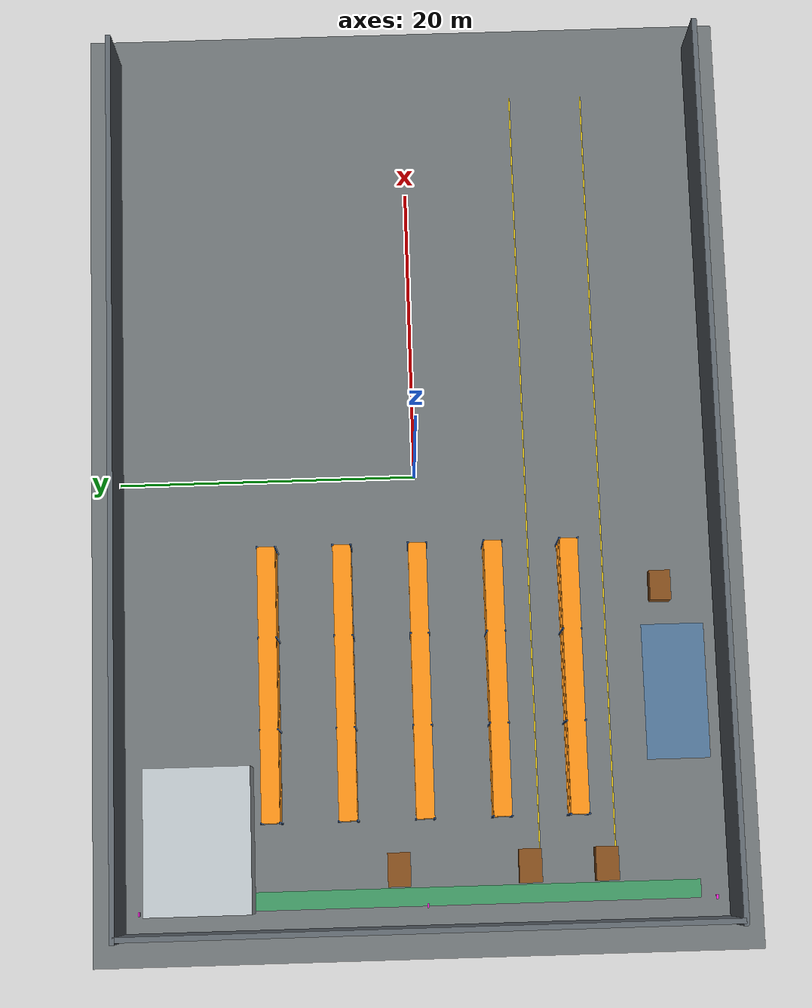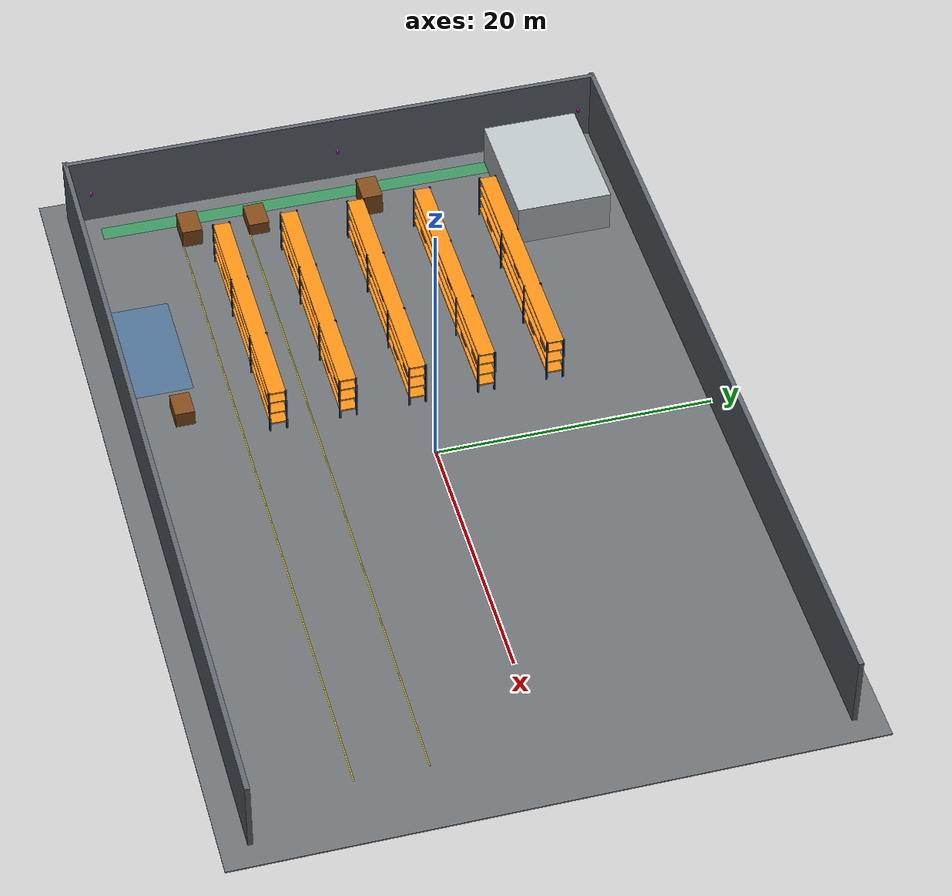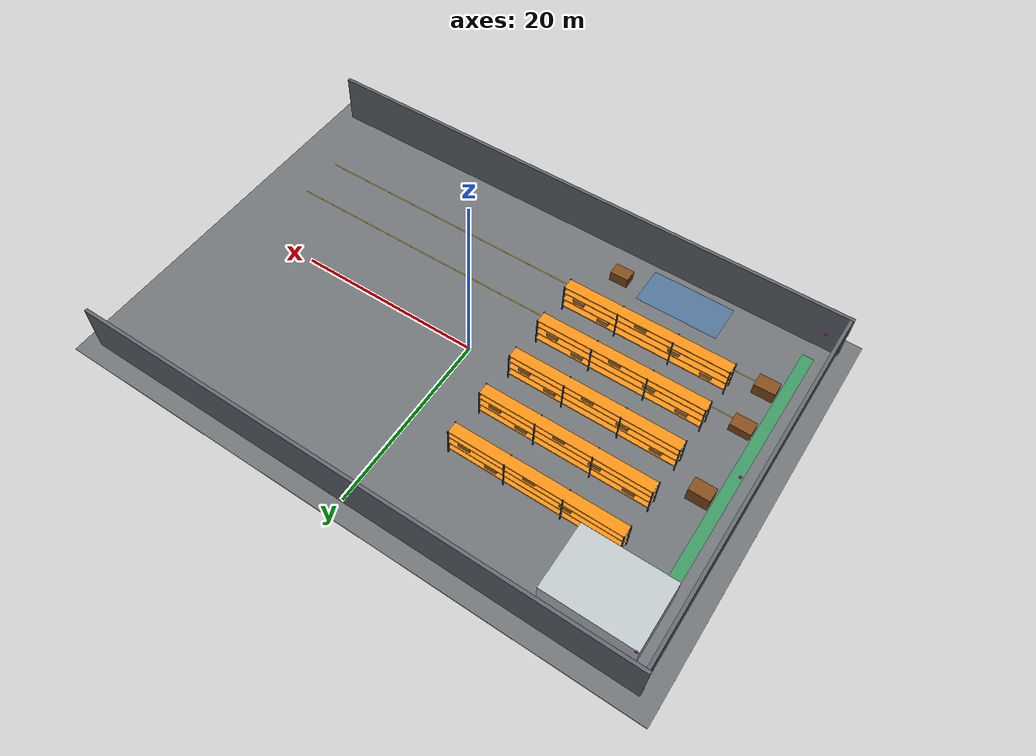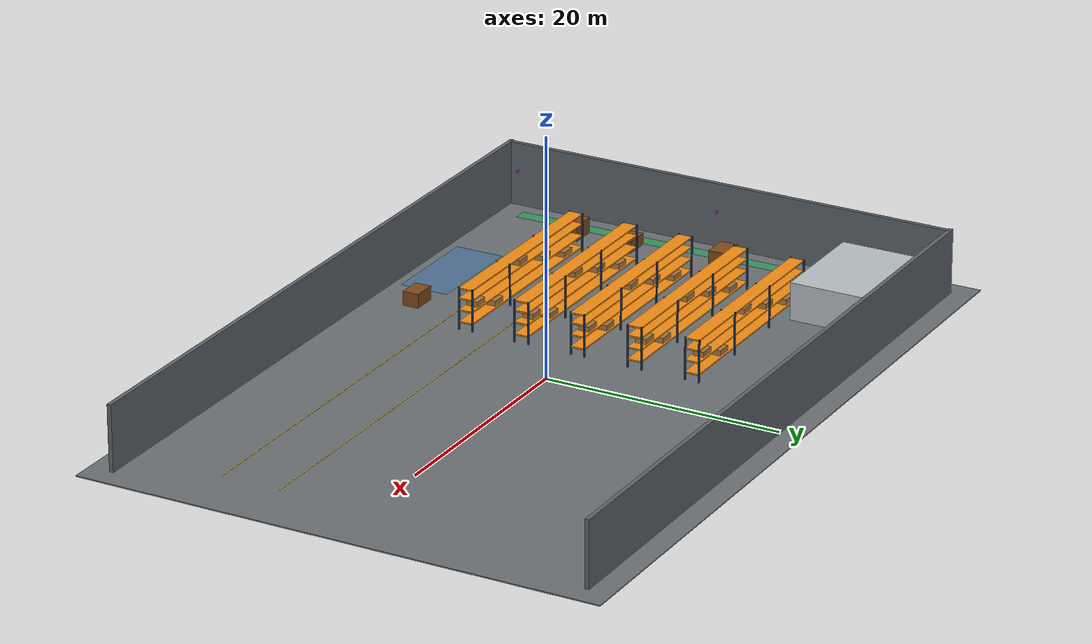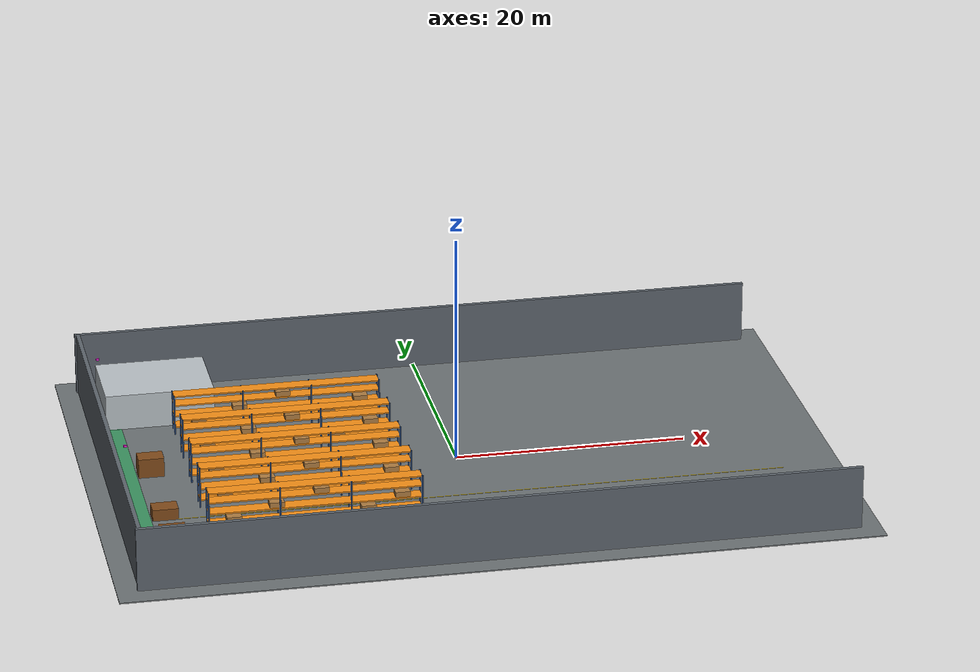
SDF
<sdf version="1.7">
 <world name="real_warehouse">
  <include><uri>model://sun</uri></include>
  <model name="concrete_floor">
   <static>true</static>
   <pose>0 0 -0.06 0 0 0</pose>
   <link name="floor">
    <collision name="collision">
     <geometry><box><size>64 44 0.10</size></box></geometry>
     <surface><friction><ode><mu>1.0</mu><mu2>1.0</mu2></ode></friction></surface>
    </collision>
    <visual name="visual">
     <geometry><box><size>64 44 0.10</size></box></geometry>
     <material><ambient>0.42 0.44 0.45 1</ambient><diffuse>0.42 0.44 0.45 1</diffuse></material>
    </visual>
   </link>
  </model>
  <model name="north_wall">
   <static>true</static>
   <pose>0.0 20.0 2.75 0 0 0</pose>
   <link name="link">
    <collision name="collision">
     <geometry><box><size>60.6 0.35 5.5</size></box></geometry>
     <surface><friction><ode><mu>0.9</mu><mu2>0.9</mu2></ode></friction></surface>
    </collision>
    <visual name="visual">
     <geometry><box><size>60.6 0.35 5.5</size></box></geometry>
     <material><ambient>0.36 0.39 0.42 1</ambient><diffuse>0.36 0.39 0.42 1</diffuse></material>
    </visual>
   </link>
  </model>
  <model name="south_wall">
   <static>true</static>
   <pose>0.0 -20.0 2.75 0 0 0</pose>
   <link name="link">
    <collision name="collision">
     <geometry><box><size>60.6 0.35 5.5</size></box></geometry>
     <surface><friction><ode><mu>0.9</mu><mu2>0.9</mu2></ode></friction></surface>
    </collision>
    <visual name="visual">
     <geometry><box><size>60.6 0.35 5.5</size></box></geometry>
     <material><ambient>0.36 0.39 0.42 1</ambient><diffuse>0.36 0.39 0.42 1</diffuse></material>
    </visual>
   </link>
  </model>
  <model name="west_wall">
   <static>true</static>
   <pose>-30.0 0.0 2.75 0 0 0</pose>
   <link name="link">
    <collision name="collision">
     <geometry><box><size>0.35 40.0 5.5</size></box></geometry>
     <surface><friction><ode><mu>0.9</mu><mu2>0.9</mu2></ode></friction></surface>
    </collision>
    <visual name="visual">
     <geometry><box><size>0.35 40.0 5.5</size></box></geometry>
     <material><ambient>0.36 0.39 0.42 1</ambient><diffuse>0.36 0.39 0.42 1</diffuse></material>
    </visual>
   </link>
  </model>
  <model name="office_block">
   <static>true</static>
   <pose>-24.0 14.8 1.6 0 0 0</pose>
   <link name="link">
    <collision name="collision">
     <geometry><box><size>9.5 7.0 3.2</size></box></geometry>
     <surface><friction><ode><mu>0.9</mu><mu2>0.9</mu2></ode></friction></surface>
    </collision>
    <visual name="visual">
     <geometry><box><size>9.5 7.0 3.2</size></box></geometry>
     <material><ambient>0.72 0.75 0.77 1</ambient><diffuse>0.72 0.75 0.77 1</diffuse></material>
    </visual>
   </link>
  </model>
  <model name="rack_1_west">
   <static>true</static>
   <pose>-14.0 -10.0 0 0 0 0</pose>
   <link name="rack">
    <collision name="rack_footprint">
     <pose>0 0 1.8 0 0 0</pose>
     <geometry><box><size>18.0 1.2 3.6</size></box></geometry>
    </collision>
    <visual name="upright_0_0">
     <pose>-9.0 -0.6 1.8 0 0 0</pose>
     <geometry><box><size>0.12 0.12 3.6</size></box></geometry>
     <material><ambient>0.12 0.24 0.42 1</ambient><diffuse>0.12 0.24 0.42 1</diffuse></material>
    </visual>
    <visual name="upright_0_1">
     <pose>-9.0 0.6 1.8 0 0 0</pose>
     <geometry><box><size>0.12 0.12 3.6</size></box></geometry>
     <material><ambient>0.12 0.24 0.42 1</ambient><diffuse>0.12 0.24 0.42 1</diffuse></material>
    </visual>
    <visual name="upright_1_0">
     <pose>-3.0 -0.6 1.8 0 0 0</pose>
     <geometry><box><size>0.12 0.12 3.6</size></box></geometry>
     <material><ambient>0.12 0.24 0.42 1</ambient><diffuse>0.12 0.24 0.42 1</diffuse></material>
    </visual>
    <visual name="upright_1_1">
     <pose>-3.0 0.6 1.8 0 0 0</pose>
     <geometry><box><size>0.12 0.12 3.6</size></box></geometry>
     <material><ambient>0.12 0.24 0.42 1</ambient><diffuse>0.12 0.24 0.42 1</diffuse></material>
    </visual>
    <visual name="upright_2_0">
     <pose>3.0 -0.6 1.8 0 0 0</pose>
     <geometry><box><size>0.12 0.12 3.6</size></box></geometry>
     <material><ambient>0.12 0.24 0.42 1</ambient><diffuse>0.12 0.24 0.42 1</diffuse></material>
    </visual>
    <visual name="upright_2_1">
     <pose>3.0 0.6 1.8 0 0 0</pose>
     <geometry><box><size>0.12 0.12 3.6</size></box></geometry>
     <material><ambient>0.12 0.24 0.42 1</ambient><diffuse>0.12 0.24 0.42 1</diffuse></material>
    </visual>
    <visual name="upright_3_0">
     <pose>9.0 -0.6 1.8 0 0 0</pose>
     <geometry><box><size>0.12 0.12 3.6</size></box></geometry>
     <material><ambient>0.12 0.24 0.42 1</ambient><diffuse>0.12 0.24 0.42 1</diffuse></material>
    </visual>
    <visual name="upright_3_1">
     <pose>9.0 0.6 1.8 0 0 0</pose>
     <geometry><box><size>0.12 0.12 3.6</size></box></geometry>
     <material><ambient>0.12 0.24 0.42 1</ambient><diffuse>0.12 0.24 0.42 1</diffuse></material>
    </visual>
    <visual name="beam_0">
     <pose>0 0 0.65 0 0 0</pose>
     <geometry><box><size>18.0 1.2 0.12</size></box></geometry>
     <material><ambient>0.95 0.55 0.08 1</ambient><diffuse>0.95 0.55 0.08 1</diffuse></material>
    </visual>
    <visual name="beam_1">
     <pose>0 0 1.65 0 0 0</pose>
     <geometry><box><size>18.0 1.2 0.12</size></box></geometry>
     <material><ambient>0.95 0.55 0.08 1</ambient><diffuse>0.95 0.55 0.08 1</diffuse></material>
    </visual>
    <visual name="beam_2">
     <pose>0 0 2.65 0 0 0</pose>
     <geometry><box><size>18.0 1.2 0.12</size></box></geometry>
     <material><ambient>0.95 0.55 0.08 1</ambient><diffuse>0.95 0.55 0.08 1</diffuse></material>
    </visual>
    <visual name="beam_3">
     <pose>0 0 3.5 0 0 0</pose>
     <geometry><box><size>18.0 1.2 0.12</size></box></geometry>
     <material><ambient>0.95 0.55 0.08 1</ambient><diffuse>0.95 0.55 0.08 1</diffuse></material>
    </visual>
    <visual name="load_0">
     <pose>-6.84 0 0.92 0 0 0</pose>
     <geometry><box><size>1.25 0.9359999999999999 0.48</size></box></geometry>
     <material><ambient>0.67 0.48 0.25 1</ambient><diffuse>0.67 0.48 0.25 1</diffuse></material>
    </visual>
    <visual name="load_1">
     <pose>-3.2399999999999998 0 1.92 0 0 0</pose>
     <geometry><box><size>1.25 0.9359999999999999 0.48</size></box></geometry>
     <material><ambient>0.67 0.48 0.25 1</ambient><diffuse>0.67 0.48 0.25 1</diffuse></material>
    </visual>
    <visual name="load_2">
     <pose>0.54 0 2.92 0 0 0</pose>
     <geometry><box><size>1.25 0.9359999999999999 0.48</size></box></geometry>
     <material><ambient>0.67 0.48 0.25 1</ambient><diffuse>0.67 0.48 0.25 1</diffuse></material>
    </visual>
    <visual name="load_3">
     <pose>4.5 0 0.92 0 0 0</pose>
     <geometry><box><size>1.25 0.9359999999999999 0.48</size></box></geometry>
     <material><ambient>0.67 0.48 0.25 1</ambient><diffuse>0.67 0.48 0.25 1</diffuse></material>
    </visual>
    <visual name="load_4">
     <pose>7.38 0 1.92 0 0 0</pose>
     <geometry><box><size>1.25 0.9359999999999999 0.48</size></box></geometry>
     <material><ambient>0.67 0.48 0.25 1</ambient><diffuse>0.67 0.48 0.25 1</diffuse></material>
    </visual>
   </link>
  </model>
  <model name="rack_2_west">
   <static>true</static>
   <pose>-14.0 -5.0 0 0 0 0</pose>
   <link name="rack">
    <collision name="rack_footprint">
     <pose>0 0 1.8 0 0 0</pose>
     <geometry><box><size>18.0 1.2 3.6</size></box></geometry>
    </collision>
    <visual name="upright_0_0">
     <pose>-9.0 -0.6 1.8 0 0 0</pose>
     <geometry><box><size>0.12 0.12 3.6</size></box></geometry>
     <material><ambient>0.12 0.24 0.42 1</ambient><diffuse>0.12 0.24 0.42 1</diffuse></material>
    </visual>
    <visual name="upright_0_1">
     <pose>-9.0 0.6 1.8 0 0 0</pose>
     <geometry><box><size>0.12 0.12 3.6</size></box></geometry>
     <material><ambient>0.12 0.24 0.42 1</ambient><diffuse>0.12 0.24 0.42 1</diffuse></material>
    </visual>
    <visual name="upright_1_0">
     <pose>-3.0 -0.6 1.8 0 0 0</pose>
     <geometry><box><size>0.12 0.12 3.6</size></box></geometry>
     <material><ambient>0.12 0.24 0.42 1</ambient><diffuse>0.12 0.24 0.42 1</diffuse></material>
    </visual>
    <visual name="upright_1_1">
     <pose>-3.0 0.6 1.8 0 0 0</pose>
     <geometry><box><size>0.12 0.12 3.6</size></box></geometry>
     <material><ambient>0.12 0.24 0.42 1</ambient><diffuse>0.12 0.24 0.42 1</diffuse></material>
    </visual>
    <visual name="upright_2_0">
     <pose>3.0 -0.6 1.8 0 0 0</pose>
     <geometry><box><size>0.12 0.12 3.6</size></box></geometry>
     <material><ambient>0.12 0.24 0.42 1</ambient><diffuse>0.12 0.24 0.42 1</diffuse></material>
    </visual>
    <visual name="upright_2_1">
     <pose>3.0 0.6 1.8 0 0 0</pose>
     <geometry><box><size>0.12 0.12 3.6</size></box></geometry>
     <material><ambient>0.12 0.24 0.42 1</ambient><diffuse>0.12 0.24 0.42 1</diffuse></material>
    </visual>
    <visual name="upright_3_0">
     <pose>9.0 -0.6 1.8 0 0 0</pose>
     <geometry><box><size>0.12 0.12 3.6</size></box></geometry>
     <material><ambient>0.12 0.24 0.42 1</ambient><diffuse>0.12 0.24 0.42 1</diffuse></material>
    </visual>
    <visual name="upright_3_1">
     <pose>9.0 0.6 1.8 0 0 0</pose>
     <geometry><box><size>0.12 0.12 3.6</size></box></geometry>
     <material><ambient>0.12 0.24 0.42 1</ambient><diffuse>0.12 0.24 0.42 1</diffuse></material>
    </visual>
    <visual name="beam_0">
     <pose>0 0 0.65 0 0 0</pose>
     <geometry><box><size>18.0 1.2 0.12</size></box></geometry>
     <material><ambient>0.95 0.55 0.08 1</ambient><diffuse>0.95 0.55 0.08 1</diffuse></material>
    </visual>
    <visual name="beam_1">
     <pose>0 0 1.65 0 0 0</pose>
     <geometry><box><size>18.0 1.2 0.12</size></box></geometry>
     <material><ambient>0.95 0.55 0.08 1</ambient><diffuse>0.95 0.55 0.08 1</diffuse></material>
    </visual>
    <visual name="beam_2">
     <pose>0 0 2.65 0 0 0</pose>
     <geometry><box><size>18.0 1.2 0.12</size></box></geometry>
     <material><ambient>0.95 0.55 0.08 1</ambient><diffuse>0.95 0.55 0.08 1</diffuse></material>
    </visual>
    <visual name="beam_3">
     <pose>0 0 3.5 0 0 0</pose>
     <geometry><box><size>18.0 1.2 0.12</size></box></geometry>
     <material><ambient>0.95 0.55 0.08 1</ambient><diffuse>0.95 0.55 0.08 1</diffuse></material>
    </visual>
    <visual name="load_0">
     <pose>-6.84 0 0.92 0 0 0</pose>
     <geometry><box><size>1.25 0.9359999999999999 0.48</size></box></geometry>
     <material><ambient>0.67 0.48 0.25 1</ambient><diffuse>0.67 0.48 0.25 1</diffuse></material>
    </visual>
    <visual name="load_1">
     <pose>-3.2399999999999998 0 1.92 0 0 0</pose>
     <geometry><box><size>1.25 0.9359999999999999 0.48</size></box></geometry>
     <material><ambient>0.67 0.48 0.25 1</ambient><diffuse>0.67 0.48 0.25 1</diffuse></material>
    </visual>
    <visual name="load_2">
     <pose>0.54 0 2.92 0 0 0</pose>
     <geometry><box><size>1.25 0.9359999999999999 0.48</size></box></geometry>
     <material><ambient>0.67 0.48 0.25 1</ambient><diffuse>0.67 0.48 0.25 1</diffuse></material>
    </visual>
    <visual name="load_3">
     <pose>4.5 0 0.92 0 0 0</pose>
     <geometry><box><size>1.25 0.9359999999999999 0.48</size></box></geometry>
     <material><ambient>0.67 0.48 0.25 1</ambient><diffuse>0.67 0.48 0.25 1</diffuse></material>
    </visual>
    <visual name="load_4">
     <pose>7.38 0 1.92 0 0 0</pose>
     <geometry><box><size>1.25 0.9359999999999999 0.48</size></box></geometry>
     <material><ambient>0.67 0.48 0.25 1</ambient><diffuse>0.67 0.48 0.25 1</diffuse></material>
    </visual>
   </link>
  </model>
  <model name="rack_3_west">
   <static>true</static>
   <pose>-14.0 0.0 0 0 0 0</pose>
   <link name="rack">
    <collision name="rack_footprint">
     <pose>0 0 1.8 0 0 0</pose>
     <geometry><box><size>18.0 1.2 3.6</size></box></geometry>
    </collision>
    <visual name="upright_0_0">
     <pose>-9.0 -0.6 1.8 0 0 0</pose>
     <geometry><box><size>0.12 0.12 3.6</size></box></geometry>
     <material><ambient>0.12 0.24 0.42 1</ambient><diffuse>0.12 0.24 0.42 1</diffuse></material>
    </visual>
    <visual name="upright_0_1">
     <pose>-9.0 0.6 1.8 0 0 0</pose>
     <geometry><box><size>0.12 0.12 3.6</size></box></geometry>
     <material><ambient>0.12 0.24 0.42 1</ambient><diffuse>0.12 0.24 0.42 1</diffuse></material>
    </visual>
    <visual name="upright_1_0">
     <pose>-3.0 -0.6 1.8 0 0 0</pose>
     <geometry><box><size>0.12 0.12 3.6</size></box></geometry>
     <material><ambient>0.12 0.24 0.42 1</ambient><diffuse>0.12 0.24 0.42 1</diffuse></material>
    </visual>
    <visual name="upright_1_1">
     <pose>-3.0 0.6 1.8 0 0 0</pose>
     <geometry><box><size>0.12 0.12 3.6</size></box></geometry>
     <material><ambient>0.12 0.24 0.42 1</ambient><diffuse>0.12 0.24 0.42 1</diffuse></material>
    </visual>
    <visual name="upright_2_0">
     <pose>3.0 -0.6 1.8 0 0 0</pose>
     <geometry><box><size>0.12 0.12 3.6</size></box></geometry>
     <material><ambient>0.12 0.24 0.42 1</ambient><diffuse>0.12 0.24 0.42 1</diffuse></material>
    </visual>
    <visual name="upright_2_1">
     <pose>3.0 0.6 1.8 0 0 0</pose>
     <geometry><box><size>0.12 0.12 3.6</size></box></geometry>
     <material><ambient>0.12 0.24 0.42 1</ambient><diffuse>0.12 0.24 0.42 1</diffuse></material>
    </visual>
    <visual name="upright_3_0">
     <pose>9.0 -0.6 1.8 0 0 0</pose>
     <geometry><box><size>0.12 0.12 3.6</size></box></geometry>
     <material><ambient>0.12 0.24 0.42 1</ambient><diffuse>0.12 0.24 0.42 1</diffuse></material>
    </visual>
    <visual name="upright_3_1">
     <pose>9.0 0.6 1.8 0 0 0</pose>
     <geometry><box><size>0.12 0.12 3.6</size></box></geometry>
     <material><ambient>0.12 0.24 0.42 1</ambient><diffuse>0.12 0.24 0.42 1</diffuse></material>
    </visual>
    <visual name="beam_0">
     <pose>0 0 0.65 0 0 0</pose>
     <geometry><box><size>18.0 1.2 0.12</size></box></geometry>
     <material><ambient>0.95 0.55 0.08 1</ambient><diffuse>0.95 0.55 0.08 1</diffuse></material>
    </visual>
    <visual name="beam_1">
     <pose>0 0 1.65 0 0 0</pose>
     <geometry><box><size>18.0 1.2 0.12</size></box></geometry>
     <material><ambient>0.95 0.55 0.08 1</ambient><diffuse>0.95 0.55 0.08 1</diffuse></material>
    </visual>
    <visual name="beam_2">
     <pose>0 0 2.65 0 0 0</pose>
     <geometry><box><size>18.0 1.2 0.12</size></box></geometry>
     <material><ambient>0.95 0.55 0.08 1</ambient><diffuse>0.95 0.55 0.08 1</diffuse></material>
    </visual>
    <visual name="beam_3">
     <pose>0 0 3.5 0 0 0</pose>
     <geometry><box><size>18.0 1.2 0.12</size></box></geometry>
     <material><ambient>0.95 0.55 0.08 1</ambient><diffuse>0.95 0.55 0.08 1</diffuse></material>
    </visual>
    <visual name="load_0">
     <pose>-6.84 0 0.92 0 0 0</pose>
     <geometry><box><size>1.25 0.9359999999999999 0.48</size></box></geometry>
     <material><ambient>0.67 0.48 0.25 1</ambient><diffuse>0.67 0.48 0.25 1</diffuse></material>
    </visual>
    <visual name="load_1">
     <pose>-3.2399999999999998 0 1.92 0 0 0</pose>
     <geometry><box><size>1.25 0.9359999999999999 0.48</size></box></geometry>
     <material><ambient>0.67 0.48 0.25 1</ambient><diffuse>0.67 0.48 0.25 1</diffuse></material>
    </visual>
    <visual name="load_2">
     <pose>0.54 0 2.92 0 0 0</pose>
     <geometry><box><size>1.25 0.9359999999999999 0.48</size></box></geometry>
     <material><ambient>0.67 0.48 0.25 1</ambient><diffuse>0.67 0.48 0.25 1</diffuse></material>
    </visual>
    <visual name="load_3">
     <pose>4.5 0 0.92 0 0 0</pose>
     <geometry><box><size>1.25 0.9359999999999999 0.48</size></box></geometry>
     <material><ambient>0.67 0.48 0.25 1</ambient><diffuse>0.67 0.48 0.25 1</diffuse></material>
    </visual>
    <visual name="load_4">
     <pose>7.38 0 1.92 0 0 0</pose>
     <geometry><box><size>1.25 0.9359999999999999 0.48</size></box></geometry>
     <material><ambient>0.67 0.48 0.25 1</ambient><diffuse>0.67 0.48 0.25 1</diffuse></material>
    </visual>
   </link>
  </model>
  <model name="rack_4_west">
   <static>true</static>
   <pose>-14.0 5.0 0 0 0 0</pose>
   <link name="rack">
    <collision name="rack_footprint">
     <pose>0 0 1.8 0 0 0</pose>
     <geometry><box><size>18.0 1.2 3.6</size></box></geometry>
    </collision>
    <visual name="upright_0_0">
     <pose>-9.0 -0.6 1.8 0 0 0</pose>
     <geometry><box><size>0.12 0.12 3.6</size></box></geometry>
     <material><ambient>0.12 0.24 0.42 1</ambient><diffuse>0.12 0.24 0.42 1</diffuse></material>
    </visual>
    <visual name="upright_0_1">
     <pose>-9.0 0.6 1.8 0 0 0</pose>
     <geometry><box><size>0.12 0.12 3.6</size></box></geometry>
     <material><ambient>0.12 0.24 0.42 1</ambient><diffuse>0.12 0.24 0.42 1</diffuse></material>
    </visual>
    <visual name="upright_1_0">
     <pose>-3.0 -0.6 1.8 0 0 0</pose>
     <geometry><box><size>0.12 0.12 3.6</size></box></geometry>
     <material><ambient>0.12 0.24 0.42 1</ambient><diffuse>0.12 0.24 0.42 1</diffuse></material>
    </visual>
    <visual name="upright_1_1">
     <pose>-3.0 0.6 1.8 0 0 0</pose>
     <geometry><box><size>0.12 0.12 3.6</size></box></geometry>
     <material><ambient>0.12 0.24 0.42 1</ambient><diffuse>0.12 0.24 0.42 1</diffuse></material>
    </visual>
    <visual name="upright_2_0">
     <pose>3.0 -0.6 1.8 0 0 0</pose>
     <geometry><box><size>0.12 0.12 3.6</size></box></geometry>
     <material><ambient>0.12 0.24 0.42 1</ambient><diffuse>0.12 0.24 0.42 1</diffuse></material>
    </visual>
    <visual name="upright_2_1">
     <pose>3.0 0.6 1.8 0 0 0</pose>
     <geometry><box><size>0.12 0.12 3.6</size></box></geometry>
     <material><ambient>0.12 0.24 0.42 1</ambient><diffuse>0.12 0.24 0.42 1</diffuse></material>
    </visual>
    <visual name="upright_3_0">
     <pose>9.0 -0.6 1.8 0 0 0</pose>
     <geometry><box><size>0.12 0.12 3.6</size></box></geometry>
     <material><ambient>0.12 0.24 0.42 1</ambient><diffuse>0.12 0.24 0.42 1</diffuse></material>
    </visual>
    <visual name="upright_3_1">
     <pose>9.0 0.6 1.8 0 0 0</pose>
     <geometry><box><size>0.12 0.12 3.6</size></box></geometry>
     <material><ambient>0.12 0.24 0.42 1</ambient><diffuse>0.12 0.24 0.42 1</diffuse></material>
    </visual>
    <visual name="beam_0">
     <pose>0 0 0.65 0 0 0</pose>
     <geometry><box><size>18.0 1.2 0.12</size></box></geometry>
     <material><ambient>0.95 0.55 0.08 1</ambient><diffuse>0.95 0.55 0.08 1</diffuse></material>
    </visual>
    <visual name="beam_1">
     <pose>0 0 1.65 0 0 0</pose>
     <geometry><box><size>18.0 1.2 0.12</size></box></geometry>
     <material><ambient>0.95 0.55 0.08 1</ambient><diffuse>0.95 0.55 0.08 1</diffuse></material>
    </visual>
    <visual name="beam_2">
     <pose>0 0 2.65 0 0 0</pose>
     <geometry><box><size>18.0 1.2 0.12</size></box></geometry>
     <material><ambient>0.95 0.55 0.08 1</ambient><diffuse>0.95 0.55 0.08 1</diffuse></material>
    </visual>
    <visual name="beam_3">
     <pose>0 0 3.5 0 0 0</pose>
     <geometry><box><size>18.0 1.2 0.12</size></box></geometry>
     <material><ambient>0.95 0.55 0.08 1</ambient><diffuse>0.95 0.55 0.08 1</diffuse></material>
    </visual>
    <visual name="load_0">
     <pose>-6.84 0 0.92 0 0 0</pose>
     <geometry><box><size>1.25 0.9359999999999999 0.48</size></box></geometry>
     <material><ambient>0.67 0.48 0.25 1</ambient><diffuse>0.67 0.48 0.25 1</diffuse></material>
    </visual>
    <visual name="load_1">
     <pose>-3.2399999999999998 0 1.92 0 0 0</pose>
     <geometry><box><size>1.25 0.9359999999999999 0.48</size></box></geometry>
     <material><ambient>0.67 0.48 0.25 1</ambient><diffuse>0.67 0.48 0.25 1</diffuse></material>
    </visual>
    <visual name="load_2">
     <pose>0.54 0 2.92 0 0 0</pose>
     <geometry><box><size>1.25 0.9359999999999999 0.48</size></box></geometry>
     <material><ambient>0.67 0.48 0.25 1</ambient><diffuse>0.67 0.48 0.25 1</diffuse></material>
    </visual>
    <visual name="load_3">
     <pose>4.5 0 0.92 0 0 0</pose>
     <geometry><box><size>1.25 0.9359999999999999 0.48</size></box></geometry>
     <material><ambient>0.67 0.48 0.25 1</ambient><diffuse>0.67 0.48 0.25 1</diffuse></material>
    </visual>
    <visual name="load_4">
     <pose>7.38 0 1.92 0 0 0</pose>
     <geometry><box><size>1.25 0.9359999999999999 0.48</size></box></geometry>
     <material><ambient>0.67 0.48 0.25 1</ambient><diffuse>0.67 0.48 0.25 1</diffuse></material>
    </visual>
   </link>
  </model>
  <model name="rack_5_west">
   <static>true</static>
   <pose>-14.0 10.0 0 0 0 0</pose>
   <link name="rack">
    <collision name="rack_footprint">
     <pose>0 0 1.8 0 0 0</pose>
     <geometry><box><size>18.0 1.2 3.6</size></box></geometry>
    </collision>
    <visual name="upright_0_0">
     <pose>-9.0 -0.6 1.8 0 0 0</pose>
     <geometry><box><size>0.12 0.12 3.6</size></box></geometry>
     <material><ambient>0.12 0.24 0.42 1</ambient><diffuse>0.12 0.24 0.42 1</diffuse></material>
    </visual>
    <visual name="upright_0_1">
     <pose>-9.0 0.6 1.8 0 0 0</pose>
     <geometry><box><size>0.12 0.12 3.6</size></box></geometry>
     <material><ambient>0.12 0.24 0.42 1</ambient><diffuse>0.12 0.24 0.42 1</diffuse></material>
    </visual>
    <visual name="upright_1_0">
     <pose>-3.0 -0.6 1.8 0 0 0</pose>
     <geometry><box><size>0.12 0.12 3.6</size></box></geometry>
     <material><ambient>0.12 0.24 0.42 1</ambient><diffuse>0.12 0.24 0.42 1</diffuse></material>
    </visual>
    <visual name="upright_1_1">
     <pose>-3.0 0.6 1.8 0 0 0</pose>
     <geometry><box><size>0.12 0.12 3.6</size></box></geometry>
     <material><ambient>0.12 0.24 0.42 1</ambient><diffuse>0.12 0.24 0.42 1</diffuse></material>
    </visual>
    <visual name="upright_2_0">
     <pose>3.0 -0.6 1.8 0 0 0</pose>
     <geometry><box><size>0.12 0.12 3.6</size></box></geometry>
     <material><ambient>0.12 0.24 0.42 1</ambient><diffuse>0.12 0.24 0.42 1</diffuse></material>
    </visual>
    <visual name="upright_2_1">
     <pose>3.0 0.6 1.8 0 0 0</pose>
     <geometry><box><size>0.12 0.12 3.6</size></box></geometry>
     <material><ambient>0.12 0.24 0.42 1</ambient><diffuse>0.12 0.24 0.42 1</diffuse></material>
    </visual>
    <visual name="upright_3_0">
     <pose>9.0 -0.6 1.8 0 0 0</pose>
     <geometry><box><size>0.12 0.12 3.6</size></box></geometry>
     <material><ambient>0.12 0.24 0.42 1</ambient><diffuse>0.12 0.24 0.42 1</diffuse></material>
    </visual>
    <visual name="upright_3_1">
     <pose>9.0 0.6 1.8 0 0 0</pose>
     <geometry><box><size>0.12 0.12 3.6</size></box></geometry>
     <material><ambient>0.12 0.24 0.42 1</ambient><diffuse>0.12 0.24 0.42 1</diffuse></material>
    </visual>
    <visual name="beam_0">
     <pose>0 0 0.65 0 0 0</pose>
     <geometry><box><size>18.0 1.2 0.12</size></box></geometry>
     <material><ambient>0.95 0.55 0.08 1</ambient><diffuse>0.95 0.55 0.08 1</diffuse></material>
    </visual>
    <visual name="beam_1">
     <pose>0 0 1.65 0 0 0</pose>
     <geometry><box><size>18.0 1.2 0.12</size></box></geometry>
     <material><ambient>0.95 0.55 0.08 1</ambient><diffuse>0.95 0.55 0.08 1</diffuse></material>
    </visual>
    <visual name="beam_2">
     <pose>0 0 2.65 0 0 0</pose>
     <geometry><box><size>18.0 1.2 0.12</size></box></geometry>
     <material><ambient>0.95 0.55 0.08 1</ambient><diffuse>0.95 0.55 0.08 1</diffuse></material>
    </visual>
    <visual name="beam_3">
     <pose>0 0 3.5 0 0 0</pose>
     <geometry><box><size>18.0 1.2 0.12</size></box></geometry>
     <material><ambient>0.95 0.55 0.08 1</ambient><diffuse>0.95 0.55 0.08 1</diffuse></material>
    </visual>
    <visual name="load_0">
     <pose>-6.84 0 0.92 0 0 0</pose>
     <geometry><box><size>1.25 0.9359999999999999 0.48</size></box></geometry>
     <material><ambient>0.67 0.48 0.25 1</ambient><diffuse>0.67 0.48 0.25 1</diffuse></material>
    </visual>
    <visual name="load_1">
     <pose>-3.2399999999999998 0 1.92 0 0 0</pose>
     <geometry><box><size>1.25 0.9359999999999999 0.48</size></box></geometry>
     <material><ambient>0.67 0.48 0.25 1</ambient><diffuse>0.67 0.48 0.25 1</diffuse></material>
    </visual>
    <visual name="load_2">
     <pose>0.54 0 2.92 0 0 0</pose>
     <geometry><box><size>1.25 0.9359999999999999 0.48</size></box></geometry>
     <material><ambient>0.67 0.48 0.25 1</ambient><diffuse>0.67 0.48 0.25 1</diffuse></material>
    </visual>
    <visual name="load_3">
     <pose>4.5 0 0.92 0 0 0</pose>
     <geometry><box><size>1.25 0.9359999999999999 0.48</size></box></geometry>
     <material><ambient>0.67 0.48 0.25 1</ambient><diffuse>0.67 0.48 0.25 1</diffuse></material>
    </visual>
    <visual name="load_4">
     <pose>7.38 0 1.92 0 0 0</pose>
     <geometry><box><size>1.25 0.9359999999999999 0.48</size></box></geometry>
     <material><ambient>0.67 0.48 0.25 1</ambient><diffuse>0.67 0.48 0.25 1</diffuse></material>
    </visual>
   </link>
  </model>
  <model name="pallet_west_1">
   <static>true</static>
   <pose>-26.2 -11.8 0.7 0 0 0</pose>
   <link name="link">
    <collision name="collision">
     <geometry><box><size>2.2 1.5 1.4</size></box></geometry>
     <surface><friction><ode><mu>0.9</mu><mu2>0.9</mu2></ode></friction></surface>
    </collision>
    <visual name="visual">
     <geometry><box><size>2.2 1.5 1.4</size></box></geometry>
     <material><ambient>0.50 0.29 0.10 1</ambient><diffuse>0.50 0.29 0.10 1</diffuse></material>
    </visual>
   </link>
  </model>
  <model name="pallet_west_2">
   <static>true</static>
   <pose>-26.2 -6.8 0.5 0 0 0</pose>
   <link name="link">
    <collision name="collision">
     <geometry><box><size>2.2 1.5 1.0</size></box></geometry>
     <surface><friction><ode><mu>0.9</mu><mu2>0.9</mu2></ode></friction></surface>
    </collision>
    <visual name="visual">
     <geometry><box><size>2.2 1.5 1.0</size></box></geometry>
     <material><ambient>0.50 0.29 0.10 1</ambient><diffuse>0.50 0.29 0.10 1</diffuse></material>
    </visual>
   </link>
  </model>
  <model name="pallet_west_3">
   <static>true</static>
   <pose>-26.2 1.8 0.85 0 0 0</pose>
   <link name="link">
    <collision name="collision">
     <geometry><box><size>2.2 1.5 1.7</size></box></geometry>
     <surface><friction><ode><mu>0.9</mu><mu2>0.9</mu2></ode></friction></surface>
    </collision>
    <visual name="visual">
     <geometry><box><size>2.2 1.5 1.7</size></box></geometry>
     <material><ambient>0.50 0.29 0.10 1</ambient><diffuse>0.50 0.29 0.10 1</diffuse></material>
    </visual>
   </link>
  </model>
  <model name="staging_pallet_1">
   <static>true</static>
   <pose>-8.0 -16.2 0.6 0 0 0</pose>
   <link name="link">
    <collision name="collision">
     <geometry><box><size>2.0 1.4 1.2</size></box></geometry>
     <surface><friction><ode><mu>0.9</mu><mu2>0.9</mu2></ode></friction></surface>
    </collision>
    <visual name="visual">
     <geometry><box><size>2.0 1.4 1.2</size></box></geometry>
     <material><ambient>0.50 0.29 0.10 1</ambient><diffuse>0.50 0.29 0.10 1</diffuse></material>
    </visual>
   </link>
  </model>
  <model name="aisle_line_m12_5">
   <static>true</static>
   <pose>0.0 -12.5 0.012 0 0 0</pose>
   <link name="marking">
    <visual name="visual">
     <geometry><box><size>54.0 0.08 0.012</size></box></geometry>
     <material><ambient>0.95 0.82 0.10 0.9</ambient><diffuse>0.95 0.82 0.10 0.9</diffuse></material>
    </visual>
   </link>
  </model>
  <model name="aisle_line_m7_5">
   <static>true</static>
   <pose>0.0 -7.5 0.012 0 0 0</pose>
   <link name="marking">
    <visual name="visual">
     <geometry><box><size>54.0 0.08 0.012</size></box></geometry>
     <material><ambient>0.95 0.82 0.10 0.9</ambient><diffuse>0.95 0.82 0.10 0.9</diffuse></material>
    </visual>
   </link>
  </model>
  <model name="pedestrian_lane">
   <static>true</static>
   <pose>-28.0 0.0 0.012 0 0 0</pose>
   <link name="marking">
    <visual name="visual">
     <geometry><box><size>1.2 36.0 0.012</size></box></geometry>
     <material><ambient>0.12 0.72 0.35 0.55</ambient><diffuse>0.12 0.72 0.35 0.55</diffuse></material>
    </visual>
   </link>
  </model>
  <model name="loading_bay_1">
   <static>true</static>
   <pose>-15.0 -17.0 0.012 0 0 0</pose>
   <link name="marking">
    <visual name="visual">
     <geometry><box><size>9.0 4.2 0.012</size></box></geometry>
     <material><ambient>0.10 0.48 0.88 0.32</ambient><diffuse>0.10 0.48 0.88 0.32</diffuse></material>
    </visual>
   </link>
  </model>
  <model name="uwb_anchor_sw">
   <static>true</static>
   <pose>-28.5 -18.5 3.6 0 0 0</pose>
   <link name="tag">
    <visual name="body">
     <geometry><box><size>0.28 0.12 0.20</size></box></geometry>
     <material><ambient>0.92 0.12 0.82 1</ambient><diffuse>0.92 0.12 0.82 1</diffuse></material>
    </visual>
   </link>
  </model>
  <model name="uwb_anchor_w">
   <static>true</static>
   <pose>-28.5 0.0 3.6 0 0 0</pose>
   <link name="tag">
    <visual name="body">
     <geometry><box><size>0.28 0.12 0.20</size></box></geometry>
     <material><ambient>0.92 0.12 0.82 1</ambient><diffuse>0.92 0.12 0.82 1</diffuse></material>
    </visual>
   </link>
  </model>
  <model name="uwb_anchor_nw">
   <static>true</static>
   <pose>-28.5 18.5 3.6 0 0 0</pose>
   <link name="tag">
    <visual name="body">
     <geometry><box><size>0.28 0.12 0.20</size></box></geometry>
     <material><ambient>0.92 0.12 0.82 1</ambient><diffuse>0.92 0.12 0.82 1</diffuse></material>
    </visual>
   </link>
  </model>
 </world>
</sdf>
